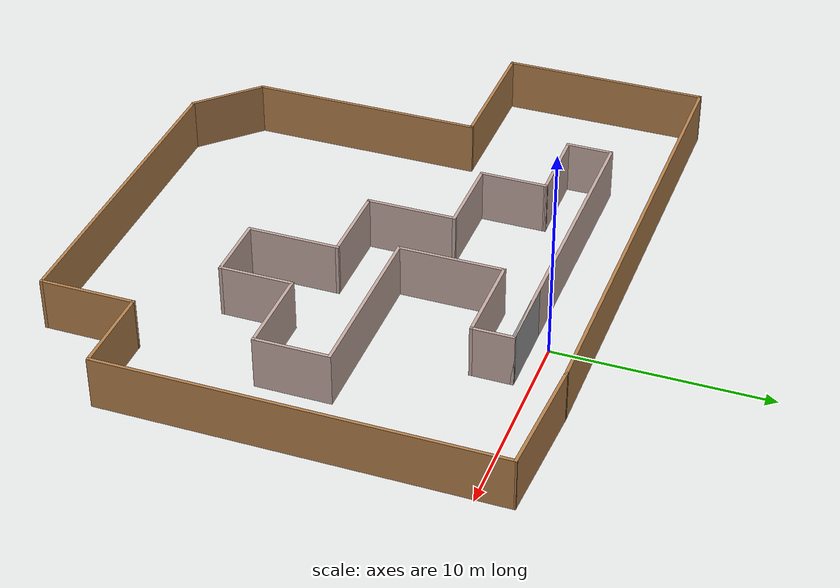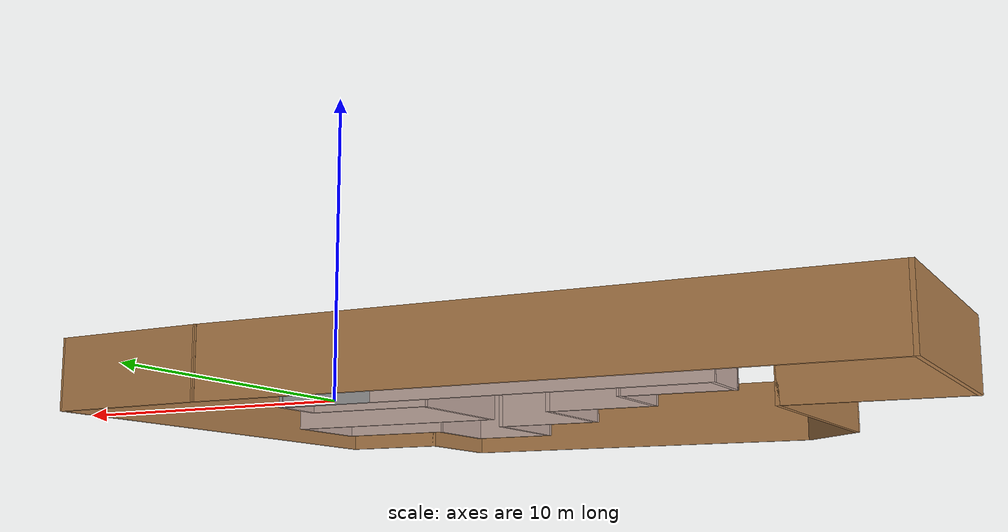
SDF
<?xml version='1.0'?>
<sdf version='1.7'>
  <model name='yarab'>
    <pose>-4.32939 -9.59715 0 0 -0 0</pose>
    <link name='Wall_1'>
      <collision name='Wall_1_Collision'>
        <geometry>
          <box>
            <size>3.5 0.15 2.5</size>
          </box>
        </geometry>
        <pose>0 0 1.25 0 -0 0</pose>
      </collision>
      <visual name='Wall_1_Visual'>
        <pose>0 0 1.25 0 -0 0</pose>
        <geometry>
          <box>
            <size>3.5 0.15 2.5</size>
          </box>
        </geometry>
        <material>
          <script>
            <uri>file://media/materials/scripts/gazebo.material</uri>
            <name>Gazebo/Grey</name>
          </script>
          <ambient>1 1 1 1</ambient>
        </material>
        <meta>
          <layer>0</layer>
        </meta>
      </visual>
      <pose>5.24439 8.78715 0 0 -0 0</pose>
    </link>
    <link name='Wall_10'>
      <collision name='Wall_10_Collision'>
        <geometry>
          <box>
            <size>5 0.15 2.5</size>
          </box>
        </geometry>
        <pose>0 0 1.25 0 -0 0</pose>
      </collision>
      <visual name='Wall_10_Visual'>
        <pose>0 0 1.25 0 -0 0</pose>
        <geometry>
          <box>
            <size>5 0.15 2.5</size>
          </box>
        </geometry>
        <material>
          <script>
            <uri>file://media/materials/scripts/gazebo.material</uri>
            <name>Gazebo/Grey</name>
          </script>
          <ambient>0.760784 0.662745 0.627451 1</ambient>
        </material>
        <meta>
          <layer>0</layer>
        </meta>
      </visual>
      <pose>2.56939 4.51215 0 0 -0 -1.5708</pose>
    </link>
    <link name='Wall_12'>
      <collision name='Wall_12_Collision'>
        <geometry>
          <box>
            <size>8.25 0.15 2.5</size>
          </box>
        </geometry>
        <pose>0 0 1.25 0 -0 0</pose>
      </collision>
      <visual name='Wall_12_Visual'>
        <pose>0 0 1.25 0 -0 0</pose>
        <geometry>
          <box>
            <size>8.25 0.15 2.5</size>
          </box>
        </geometry>
        <material>
          <script>
            <uri>file://media/materials/scripts/gazebo.material</uri>
            <name>Gazebo/Grey</name>
          </script>
          <ambient>0.760784 0.662745 0.627451 1</ambient>
        </material>
        <meta>
          <layer>0</layer>
        </meta>
      </visual>
      <pose>6.61939 2.08715 0 0 -0 0</pose>
    </link>
    <link name='Wall_14'>
      <collision name='Wall_14_Collision'>
        <geometry>
          <box>
            <size>3.55 0.15 2.5</size>
          </box>
        </geometry>
        <pose>0 0 1.25 0 -0 0</pose>
      </collision>
      <visual name='Wall_14_Visual'>
        <pose>0 0 1.25 0 -0 0</pose>
        <geometry>
          <box>
            <size>3.55 0.15 2.5</size>
          </box>
        </geometry>
        <material>
          <script>
            <uri>file://media/materials/scripts/gazebo.material</uri>
            <name>Gazebo/Grey</name>
          </script>
          <ambient>0.760784 0.662745 0.627451 1</ambient>
        </material>
        <meta>
          <layer>0</layer>
        </meta>
      </visual>
      <pose>10.6694 0.387149 0 0 -0 -1.5708</pose>
    </link>
    <link name='Wall_16'>
      <collision name='Wall_16_Collision'>
        <geometry>
          <box>
            <size>4.25 0.15 2.5</size>
          </box>
        </geometry>
        <pose>0 0 1.25 0 -0 0</pose>
      </collision>
      <visual name='Wall_16_Visual'>
        <pose>0 0 1.25 0 -0 0</pose>
        <geometry>
          <box>
            <size>4.25 0.15 2.5</size>
          </box>
        </geometry>
        <material>
          <script>
            <uri>file://media/materials/scripts/gazebo.material</uri>
            <name>Gazebo/Grey</name>
          </script>
          <ambient>0.760784 0.662745 0.627451 1</ambient>
        </material>
        <meta>
          <layer>0</layer>
        </meta>
      </visual>
      <pose>8.61939 -1.31285 0 0 -0 3.14159</pose>
    </link>
    <link name='Wall_18'>
      <collision name='Wall_18_Collision'>
        <geometry>
          <box>
            <size>3.5 0.15 2.5</size>
          </box>
        </geometry>
        <pose>0 0 1.25 0 -0 0</pose>
      </collision>
      <visual name='Wall_18_Visual'>
        <pose>0 0 1.25 0 -0 0</pose>
        <geometry>
          <box>
            <size>3.5 0.15 2.5</size>
          </box>
        </geometry>
        <material>
          <script>
            <uri>file://media/materials/scripts/gazebo.material</uri>
            <name>Gazebo/Grey</name>
          </script>
          <ambient>0.760784 0.662745 0.627451 1</ambient>
        </material>
        <meta>
          <layer>0</layer>
        </meta>
      </visual>
      <pose>6.56939 -2.98785 0 0 -0 -1.5708</pose>
    </link>
    <link name='Wall_2'>
      <collision name='Wall_2_Collision'>
        <geometry>
          <box>
            <size>15 0.15 2.5</size>
          </box>
        </geometry>
        <pose>0 0 1.25 0 -0 0</pose>
      </collision>
      <visual name='Wall_2_Visual'>
        <pose>0 0 1.25 0 -0 0</pose>
        <geometry>
          <box>
            <size>15 0.15 2.5</size>
          </box>
        </geometry>
        <material>
          <script>
            <uri>file://media/materials/scripts/gazebo.material</uri>
            <name>Gazebo/Grey</name>
          </script>
          <ambient>0.760784 0.662745 0.627451 1</ambient>
        </material>
        <meta>
          <layer>0</layer>
        </meta>
      </visual>
      <pose>-0.50561 8.78715 0 0 -0 3.14159</pose>
    </link>
    <link name='Wall_20'>
      <collision name='Wall_20_Collision'>
        <geometry>
          <box>
            <size>3.25 0.15 2.5</size>
          </box>
        </geometry>
        <pose>0 0 1.25 0 -0 0</pose>
      </collision>
      <visual name='Wall_20_Visual'>
        <pose>0 0 1.25 0 -0 0</pose>
        <geometry>
          <box>
            <size>3.25 0.15 2.5</size>
          </box>
        </geometry>
        <material>
          <script>
            <uri>file://media/materials/scripts/gazebo.material</uri>
            <name>Gazebo/Grey</name>
          </script>
          <ambient>0.760784 0.662745 0.627451 1</ambient>
        </material>
        <meta>
          <layer>0</layer>
        </meta>
      </visual>
      <pose>5.01939 -4.66285 0 0 -0 3.14159</pose>
    </link>
    <link name='Wall_22'>
      <collision name='Wall_22_Collision'>
        <geometry>
          <box>
            <size>4.35 0.15 2.5</size>
          </box>
        </geometry>
        <pose>0 0 1.25 0 -0 0</pose>
      </collision>
      <visual name='Wall_22_Visual'>
        <pose>0 0 1.25 0 -0 0</pose>
        <geometry>
          <box>
            <size>4.35 0.15 2.5</size>
          </box>
        </geometry>
        <material>
          <script>
            <uri>file://media/materials/scripts/gazebo.material</uri>
            <name>Gazebo/Grey</name>
          </script>
          <ambient>0.760784 0.662745 0.627451 1</ambient>
        </material>
        <meta>
          <layer>0</layer>
        </meta>
      </visual>
      <pose>3.46939 -2.56285 0 0 -0 1.5708</pose>
    </link>
    <link name='Wall_24'>
      <collision name='Wall_24_Collision'>
        <geometry>
          <box>
            <size>4 0.15 2.5</size>
          </box>
        </geometry>
        <pose>0 0 1.25 0 -0 0</pose>
      </collision>
      <visual name='Wall_24_Visual'>
        <pose>0 0 1.25 0 -0 0</pose>
        <geometry>
          <box>
            <size>4 0.15 2.5</size>
          </box>
        </geometry>
        <material>
          <script>
            <uri>file://media/materials/scripts/gazebo.material</uri>
            <name>Gazebo/Grey</name>
          </script>
          <ambient>0.760784 0.662745 0.627451 1</ambient>
        </material>
        <meta>
          <layer>0</layer>
        </meta>
      </visual>
      <pose>1.54439 -0.462852 0 0 -0 3.14159</pose>
    </link>
    <link name='Wall_26'>
      <collision name='Wall_26_Collision'>
        <geometry>
          <box>
            <size>4.25 0.15 2.5</size>
          </box>
        </geometry>
        <pose>0 0 1.25 0 -0 0</pose>
      </collision>
      <visual name='Wall_26_Visual'>
        <pose>0 0 1.25 0 -0 0</pose>
        <geometry>
          <box>
            <size>4.25 0.15 2.5</size>
          </box>
        </geometry>
        <material>
          <script>
            <uri>file://media/materials/scripts/gazebo.material</uri>
            <name>Gazebo/Grey</name>
          </script>
          <ambient>0.760784 0.662745 0.627451 1</ambient>
        </material>
        <meta>
          <layer>0</layer>
        </meta>
      </visual>
      <pose>-0.38061 1.58715 0 0 -0 1.5708</pose>
    </link>
    <link name='Wall_28'>
      <collision name='Wall_28_Collision'>
        <geometry>
          <box>
            <size>4 0.15 2.5</size>
          </box>
        </geometry>
        <pose>0 0 1.25 0 -0 0</pose>
      </collision>
      <visual name='Wall_28_Visual'>
        <pose>0 0 1.25 0 -0 0</pose>
        <geometry>
          <box>
            <size>4 0.15 2.5</size>
          </box>
        </geometry>
        <material>
          <script>
            <uri>file://media/materials/scripts/gazebo.material</uri>
            <name>Gazebo/Grey</name>
          </script>
          <ambient>0.760784 0.662745 0.627451 1</ambient>
        </material>
        <meta>
          <layer>0</layer>
        </meta>
      </visual>
      <pose>-2.30561 3.63715 0 0 -0 3.14159</pose>
    </link>
    <link name='Wall_30'>
      <collision name='Wall_30_Collision'>
        <geometry>
          <box>
            <size>3.25 0.15 2.5</size>
          </box>
        </geometry>
        <pose>0 0 1.25 0 -0 0</pose>
      </collision>
      <visual name='Wall_30_Visual'>
        <pose>0 0 1.25 0 -0 0</pose>
        <geometry>
          <box>
            <size>3.25 0.15 2.5</size>
          </box>
        </geometry>
        <material>
          <script>
            <uri>file://media/materials/scripts/gazebo.material</uri>
            <name>Gazebo/Grey</name>
          </script>
          <ambient>0.760784 0.662745 0.627451 1</ambient>
        </material>
        <meta>
          <layer>0</layer>
        </meta>
      </visual>
      <pose>-4.23061 5.18715 0 0 -0 1.5708</pose>
    </link>
    <link name='Wall_32'>
      <collision name='Wall_32_Collision'>
        <geometry>
          <box>
            <size>2.25 0.15 2.5</size>
          </box>
        </geometry>
        <pose>0 0 1.25 0 -0 0</pose>
      </collision>
      <visual name='Wall_32_Visual'>
        <pose>0 0 1.25 0 -0 0</pose>
        <geometry>
          <box>
            <size>2.25 0.15 2.5</size>
          </box>
        </geometry>
        <material>
          <script>
            <uri>file://media/materials/scripts/gazebo.material</uri>
            <name>Gazebo/Grey</name>
          </script>
          <ambient>0.760784 0.662745 0.627451 1</ambient>
        </material>
        <meta>
          <layer>0</layer>
        </meta>
      </visual>
      <pose>-7.93061 7.73715 0 0 -0 -1.5708</pose>
    </link>
    <link name='Wall_33'>
      <collision name='Wall_33_Collision'>
        <geometry>
          <box>
            <size>3.85034 0.15 2.5</size>
          </box>
        </geometry>
        <pose>0 0 1.25 0 -0 0</pose>
      </collision>
      <visual name='Wall_33_Visual'>
        <pose>0 0 1.25 0 -0 0</pose>
        <geometry>
          <box>
            <size>3.85034 0.15 2.5</size>
          </box>
        </geometry>
        <material>
          <script>
            <uri>file://media/materials/scripts/gazebo.material</uri>
            <name>Gazebo/Grey</name>
          </script>
          <ambient>0.760784 0.662745 0.627451 1</ambient>
        </material>
        <meta>
          <layer>0</layer>
        </meta>
      </visual>
      <pose>-6.08061 6.71215 0 0 -0 0.013513</pose>
    </link>
    <link name='Wall_35'>
      <collision name='Wall_35_Collision'>
        <geometry>
          <box>
            <size>22.75 0.15 2.5</size>
          </box>
        </geometry>
        <pose>0 0 1.25 0 -0 0</pose>
      </collision>
      <visual name='Wall_35_Visual'>
        <pose>0 0 1.25 0 -0 0</pose>
        <geometry>
          <box>
            <size>22.75 0.15 2.5</size>
          </box>
        </geometry>
        <material>
          <script>
            <uri>file://media/materials/scripts/gazebo.material</uri>
            <name>Gazebo/Wood</name>
          </script>
          <ambient>1 1 1 1</ambient>
        </material>
        <meta>
          <layer>0</layer>
        </meta>
      </visual>
      <pose>-2.87467 11.5114 0 0 -0 3.14159</pose>
    </link>
    <link name='Wall_36'>
      <collision name='Wall_36_Collision'>
        <geometry>
          <box>
            <size>9.75 0.15 2.5</size>
          </box>
        </geometry>
        <pose>0 0 1.25 0 -0 0</pose>
      </collision>
      <visual name='Wall_36_Visual'>
        <pose>0 0 1.25 0 -0 0</pose>
        <geometry>
          <box>
            <size>9.75 0.15 2.5</size>
          </box>
        </geometry>
        <material>
          <script>
            <uri>file://media/materials/scripts/gazebo.material</uri>
            <name>Gazebo/Wood</name>
          </script>
          <ambient>1 1 1 1</ambient>
        </material>
        <meta>
          <layer>0</layer>
        </meta>
      </visual>
      <pose>-14.1747 6.71145 0 0 -0 -1.5708</pose>
    </link>
    <link name='Wall_37'>
      <collision name='Wall_37_Collision'>
        <geometry>
          <box>
            <size>6.5 0.15 2.5</size>
          </box>
        </geometry>
        <pose>0 0 1.25 0 -0 0</pose>
      </collision>
      <visual name='Wall_37_Visual'>
        <pose>0 0 1.25 0 -0 0</pose>
        <geometry>
          <box>
            <size>6.5 0.15 2.5</size>
          </box>
        </geometry>
        <material>
          <script>
            <uri>file://media/materials/scripts/gazebo.material</uri>
            <name>Gazebo/Wood</name>
          </script>
          <ambient>1 1 1 1</ambient>
        </material>
        <meta>
          <layer>0</layer>
        </meta>
      </visual>
      <pose>-10.9997 1.91145 0 0 -0 0</pose>
    </link>
    <link name='Wall_38'>
      <collision name='Wall_38_Collision'>
        <geometry>
          <box>
            <size>11 0.15 2.5</size>
          </box>
        </geometry>
        <pose>0 0 1.25 0 -0 0</pose>
      </collision>
      <visual name='Wall_38_Visual'>
        <pose>0 0 1.25 0 -0 0</pose>
        <geometry>
          <box>
            <size>11 0.15 2.5</size>
          </box>
        </geometry>
        <material>
          <script>
            <uri>file://media/materials/scripts/gazebo.material</uri>
            <name>Gazebo/Wood</name>
          </script>
          <ambient>1 1 1 1</ambient>
        </material>
        <meta>
          <layer>0</layer>
        </meta>
      </visual>
      <pose>-7.82467 -3.51355 0 0 -0 -1.5708</pose>
    </link>
    <link name='Wall_39'>
      <collision name='Wall_39_Collision'>
        <geometry>
          <box>
            <size>3.75 0.15 2.5</size>
          </box>
        </geometry>
        <pose>0 0 1.25 0 -0 0</pose>
      </collision>
      <visual name='Wall_39_Visual'>
        <pose>0 0 1.25 0 -0 0</pose>
        <geometry>
          <box>
            <size>3.75 0.15 2.5</size>
          </box>
        </geometry>
        <material>
          <script>
            <uri>file://media/materials/scripts/gazebo.material</uri>
            <name>Gazebo/Wood</name>
          </script>
          <ambient>1 1 1 1</ambient>
        </material>
        <meta>
          <layer>0</layer>
        </meta>
      </visual>
      <pose>-6.55188 -10.2113 0 0 -0 -0.785398</pose>
    </link>
    <link name='Wall_4'>
      <collision name='Wall_4_Collision'>
        <geometry>
          <box>
            <size>2 0.15 2.5</size>
          </box>
        </geometry>
        <pose>0 0 1.25 0 -0 0</pose>
      </collision>
      <visual name='Wall_4_Visual'>
        <pose>0 0 1.25 0 -0 0</pose>
        <geometry>
          <box>
            <size>2 0.15 2.5</size>
          </box>
        </geometry>
        <material>
          <script>
            <uri>file://media/materials/scripts/gazebo.material</uri>
            <name>Gazebo/Grey</name>
          </script>
          <ambient>0.760784 0.662745 0.627451 1</ambient>
        </material>
        <meta>
          <layer>0</layer>
        </meta>
      </visual>
      <pose>6.91939 7.86215 0 0 -0 -1.5708</pose>
    </link>
    <link name='Wall_40'>
      <collision name='Wall_40_Collision'>
        <geometry>
          <box>
            <size>15.5 0.15 2.5</size>
          </box>
        </geometry>
        <pose>0 0 1.25 0 -0 0</pose>
      </collision>
      <visual name='Wall_40_Visual'>
        <pose>0 0 1.25 0 -0 0</pose>
        <geometry>
          <box>
            <size>15.5 0.15 2.5</size>
          </box>
        </geometry>
        <material>
          <script>
            <uri>file://media/materials/scripts/gazebo.material</uri>
            <name>Gazebo/Wood</name>
          </script>
          <ambient>1 1 1 1</ambient>
        </material>
        <meta>
          <layer>0</layer>
        </meta>
      </visual>
      <pose>2.39592 -11.4841 0 0 -0 0</pose>
    </link>
    <link name='Wall_41'>
      <collision name='Wall_41_Collision'>
        <geometry>
          <box>
            <size>4.5 0.15 2.5</size>
          </box>
        </geometry>
        <pose>0 0 1.25 0 -0 0</pose>
      </collision>
      <visual name='Wall_41_Visual'>
        <pose>0 0 1.25 0 -0 0</pose>
        <geometry>
          <box>
            <size>4.5 0.15 2.5</size>
          </box>
        </geometry>
        <material>
          <script>
            <uri>file://media/materials/scripts/gazebo.material</uri>
            <name>Gazebo/Wood</name>
          </script>
          <ambient>1 1 1 1</ambient>
        </material>
        <meta>
          <layer>0</layer>
        </meta>
      </visual>
      <pose>10.0709 -9.30914 0 0 -0 1.5708</pose>
    </link>
    <link name='Wall_42'>
      <collision name='Wall_42_Collision'>
        <geometry>
          <box>
            <size>4.25 0.15 2.5</size>
          </box>
        </geometry>
        <pose>0 0 1.25 0 -0 0</pose>
      </collision>
      <visual name='Wall_42_Visual'>
        <pose>0 0 1.25 0 -0 0</pose>
        <geometry>
          <box>
            <size>4.25 0.15 2.5</size>
          </box>
        </geometry>
        <material>
          <script>
            <uri>file://media/materials/scripts/gazebo.material</uri>
            <name>Gazebo/Wood</name>
          </script>
          <ambient>1 1 1 1</ambient>
        </material>
        <meta>
          <layer>0</layer>
        </meta>
      </visual>
      <pose>12.1209 -7.13414 0 0 -0 0</pose>
    </link>
    <link name='Wall_43'>
      <collision name='Wall_43_Collision'>
        <geometry>
          <box>
            <size>18.5 0.15 2.5</size>
          </box>
        </geometry>
        <pose>0 0 1.25 0 -0 0</pose>
      </collision>
      <visual name='Wall_43_Visual'>
        <pose>0 0 1.25 0 -0 0</pose>
        <geometry>
          <box>
            <size>18.5 0.15 2.5</size>
          </box>
        </geometry>
        <material>
          <script>
            <uri>file://media/materials/scripts/gazebo.material</uri>
            <name>Gazebo/Wood</name>
          </script>
          <ambient>1 1 1 1</ambient>
        </material>
        <meta>
          <layer>0</layer>
        </meta>
      </visual>
      <pose>14.1709 2.04086 0 0 -0 1.5708</pose>
    </link>
    <link name='Wall_44'>
      <collision name='Wall_44_Collision'>
        <geometry>
          <box>
            <size>5.90318 0.15 2.5</size>
          </box>
        </geometry>
        <pose>0 0 1.25 0 -0 0</pose>
      </collision>
      <visual name='Wall_44_Visual'>
        <pose>0 0 1.25 0 -0 0</pose>
        <geometry>
          <box>
            <size>5.90318 0.15 2.5</size>
          </box>
        </geometry>
        <material>
          <script>
            <uri>file://media/materials/scripts/gazebo.material</uri>
            <name>Gazebo/Wood</name>
          </script>
          <ambient>1 1 1 1</ambient>
        </material>
        <meta>
          <layer>0</layer>
        </meta>
      </visual>
      <pose>11.2981 11.3637 0 0 -0 3.09019</pose>
    </link>
    <link name='Wall_8'>
      <collision name='Wall_8_Collision'>
        <geometry>
          <box>
            <size>4.5 0.15 2.5</size>
          </box>
        </geometry>
        <pose>0 0 1.25 0 -0 0</pose>
      </collision>
      <visual name='Wall_8_Visual'>
        <pose>0 0 1.25 0 -0 0</pose>
        <geometry>
          <box>
            <size>4.5 0.15 2.5</size>
          </box>
        </geometry>
        <material>
          <script>
            <uri>file://media/materials/scripts/gazebo.material</uri>
            <name>Gazebo/Grey</name>
          </script>
          <ambient>0.760784 0.662745 0.627451 1</ambient>
        </material>
        <meta>
          <layer>0</layer>
        </meta>
      </visual>
      <pose>4.74439 6.93715 0 0 -0 3.14159</pose>
    </link>
    <static>1</static>
  </model>
</sdf>
